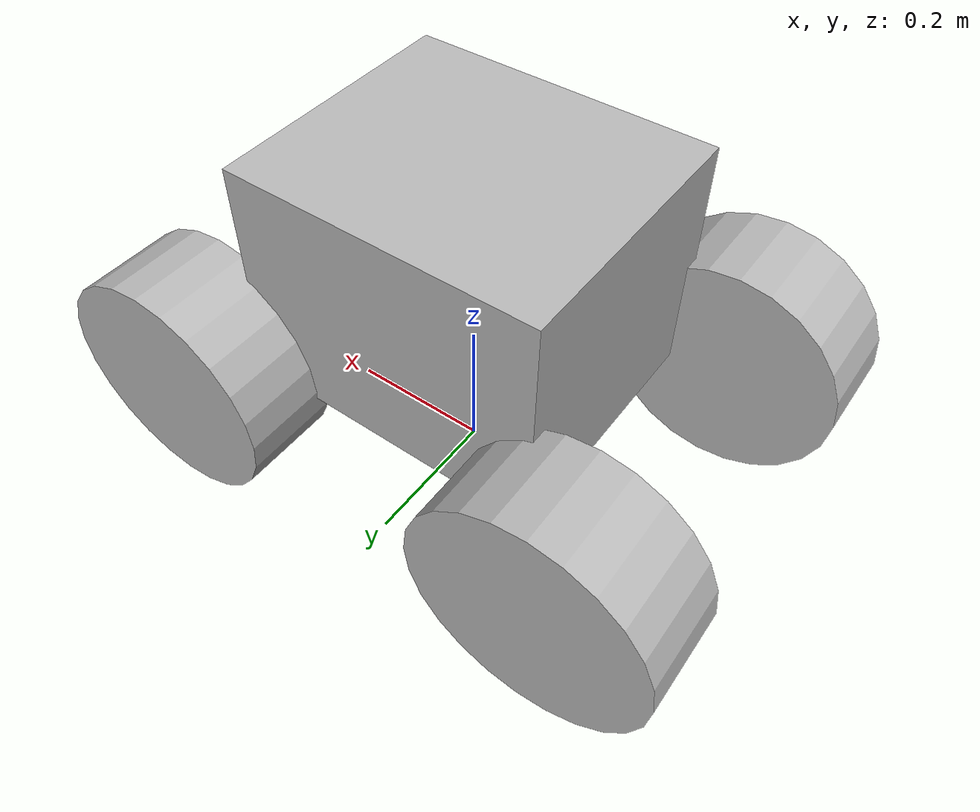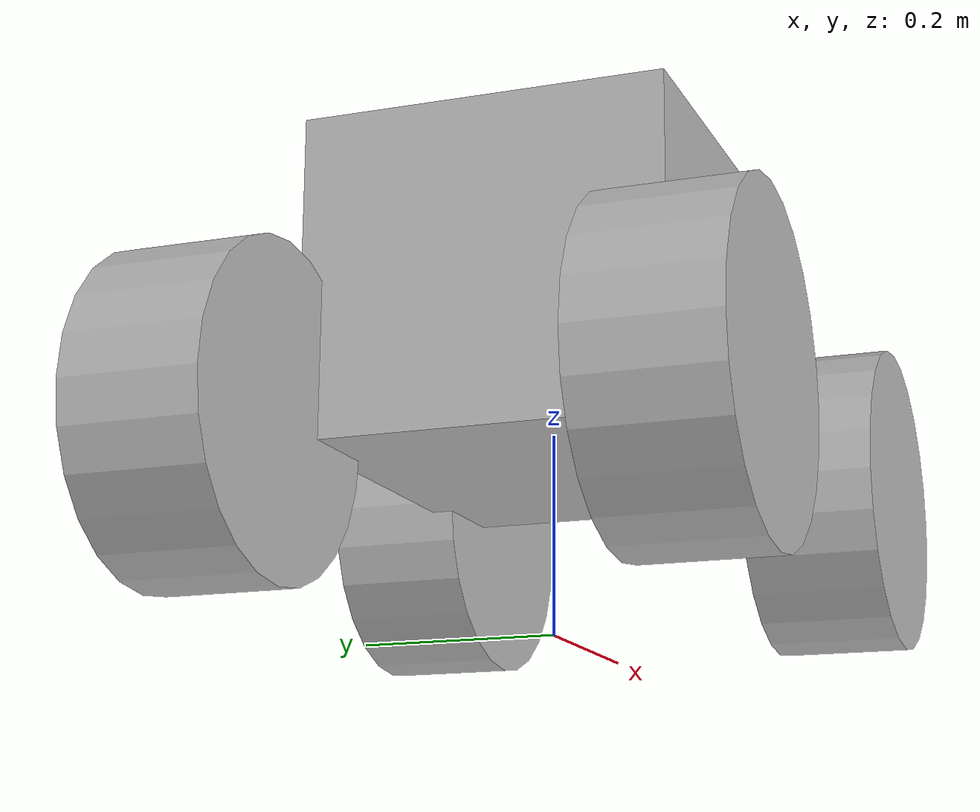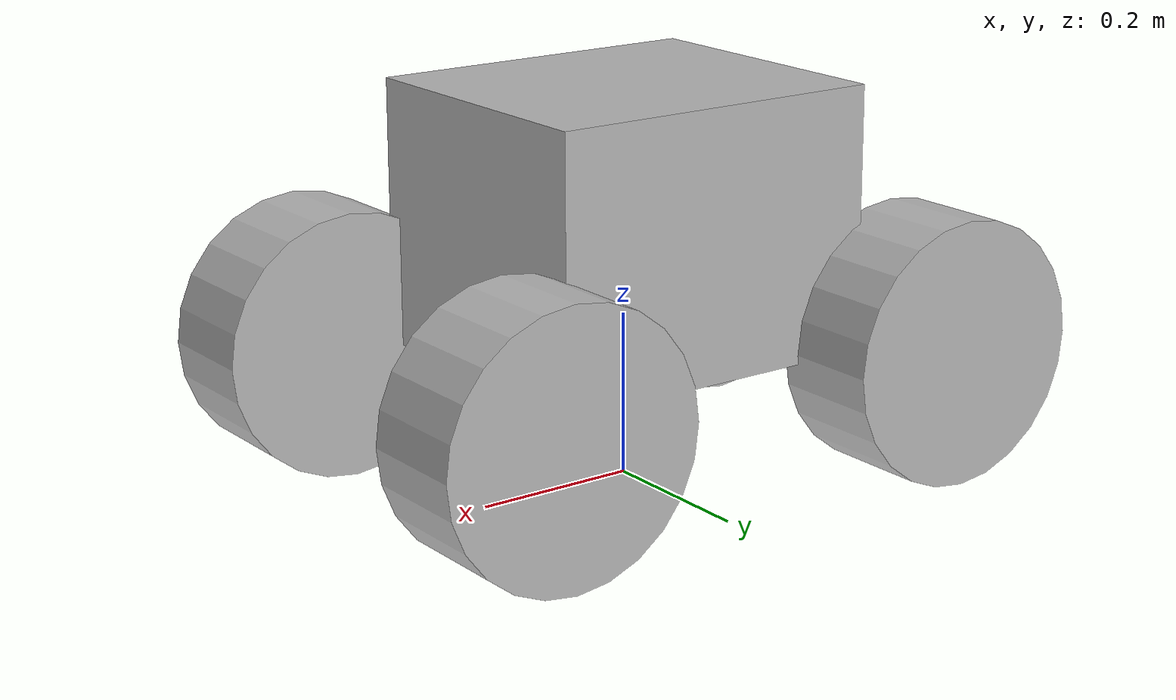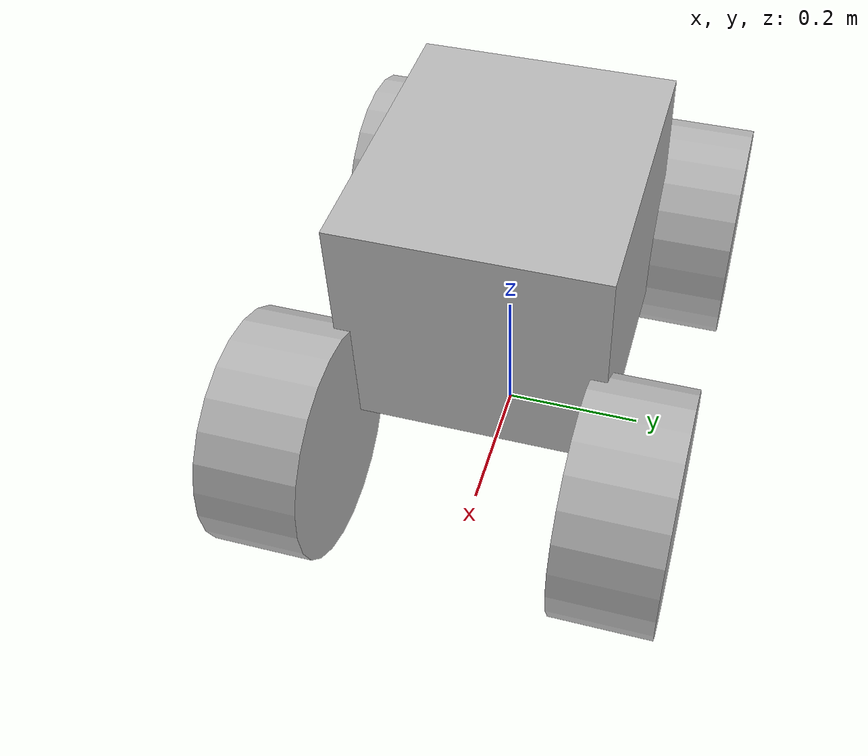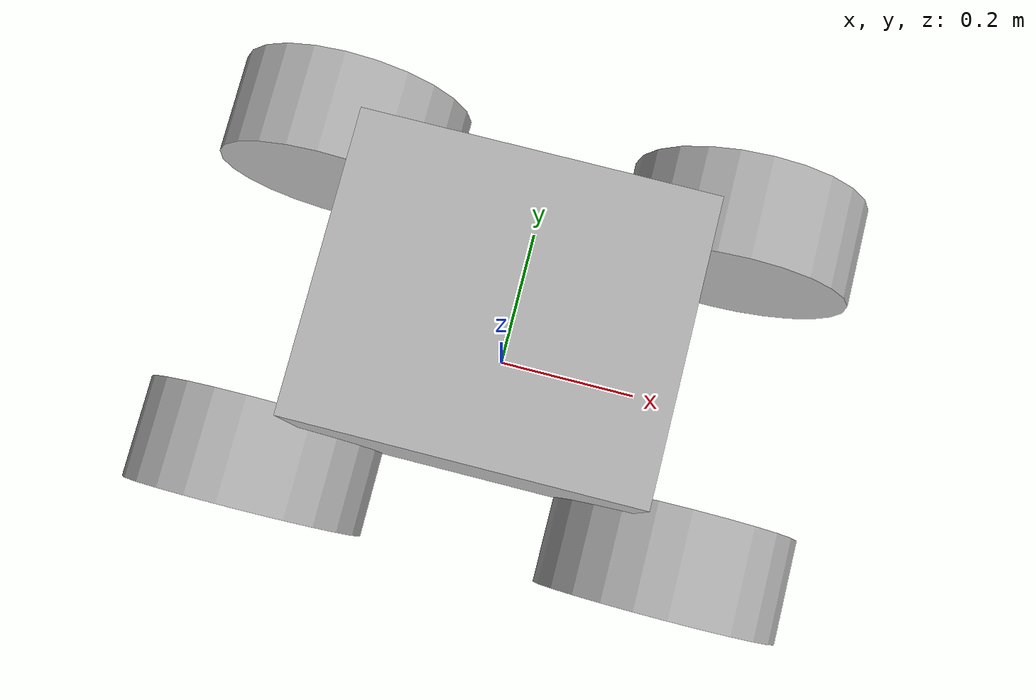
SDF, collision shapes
<?xml version="1.0" ?>
<sdf version='1.7'>
  <model name='bigbot'>

    <plugin
      filename="libgps_fix_simulator.so"
      name="gps_fix_simulator">
      <link_name>bigbot_gps</link_name>
      <child_frame>FP_POI</child_frame>
      <parent_frame>FP_ECEF</parent_frame>
      <enu_frame>FP_ENU0</enu_frame>
    </plugin>

    <link name='base_link'>
      <inertial>
        <pose>0.005541 -3e-05 0.010091 0 -0 0</pose>
        <mass>40</mass>
        <inertia>
          <ixx>1.539</ixx>
          <ixy>0.0101</ixy>
          <ixz>-0.103</ixz>
          <iyy>2.913</iyy>
          <iyz>0.0115</iyz>
          <izz>3.314</izz>
        </inertia>
      </inertial>
      <collision name='base_link_fixed_joint_lump__bigbot_Base_collision'>
        <pose>0 0 0.32 0 -0 0</pose>
        <geometry>
          <box>
            <size>0.42 0.36 0.32</size>
          </box>
        </geometry>
      </collision>
      <visual name='base_link_fixed_joint_lump__bigbot_Base_visual'>
        <pose>0 0 0 0 -0 0</pose>
        <geometry>
          <mesh>
            <scale>0.001 0.001 0.001</scale>
            <uri>model://bigbot/meshes/bigbot_frame.dae</uri>
          </mesh>
        </geometry>
      </visual>
      <visual name='base_link_fixed_joint_lump__Assembly_TIM_lidar_urdf_1_Base_visual_1'>
        <pose>0.446 0 0.306 0 -0 1.5708</pose>
        <geometry>
          <mesh>
            <scale>0.01 0.01 0.01</scale>
            <uri>model://bigbot/meshes/tim_lidar.dae</uri>
          </mesh>
        </geometry>
      </visual>
      <visual name='base_link_fixed_joint_lump__Assembly_fixposition_frame_1_Base_visual_2'>
        <pose>0.315 0 0.48 1.5708 -0 1.5708</pose>
        <geometry>
          <mesh>
            <scale>0.001 0.001 0.001</scale>
            <uri>model://bigbot/meshes/fixpos.dae</uri>
          </mesh>
        </geometry>
      </visual>
    </link>

    <joint name="base_to_lidar" type="fixed">
      <parent>base_link</parent>
      <child>Assembly_TIM_lidar_urdf_1_UCS2</child>
      <pose>0.446 0 0.391 0 0 0</pose>
    </joint>

    <link name="Assembly_TIM_lidar_urdf_1_UCS2">
      <sensor name='lidar' type="gpu_lidar">
        <always_on>true</always_on>
        <visualize>true</visualize>
        <pose>0.446 0 0.391 0 -0 0</pose>
        <update_rate>5</update_rate>
        <topic>scan</topic>
        <gz_frame_id>Assembly_TIM_lidar_urdf_1_UCS2</gz_frame_id>
        <lidar>
          <scan>
            <horizontal>
              <samples>360</samples>
              <resolution>1.0</resolution>
              <min_angle>-2.0</min_angle>
              <max_angle>2.0</max_angle>
            </horizontal>
            <vertical>
              <samples>1</samples>
              <min_angle>0.0</min_angle>
              <max_angle>0.0</max_angle>
          </vertical>
          </scan>
          <range>
            <min>0.1</min>
            <max>15</max>
            <resolution>0.015</resolution>
          </range>
          <noise>
            <type>gaussian</type>
            <mean>0.0</mean>
            <stddev>0.01</stddev>
          </noise>
        </lidar>
      </sensor>
  </link>

<joint name="base_to_gps" type="fixed">
  <parent>base_link</parent>
  <child>bigbot_gps</child>
  <pose>0.375 0.0 0.480 0 0 0</pose>
</joint>

    <link name="bigbot_gps">
      <sensor name="gps_sensor" type="navsat">
        <always_on>true</always_on>
        <update_rate>10</update_rate>
        <topic>gps/fix</topic>
        <gz_frame_id>bigbot_UCSTF</gz_frame_id>
        <navsat>
          <position_sensing>
            <horizontal>
              <noise type="gaussian">
                <mean>0.0</mean>
                <stddev>2e-8</stddev>
              </noise>
            </horizontal>
            <vertical>
              <noise type="gaussian">
                <mean>0.0</mean>
                <stddev>4e-8</stddev>
              </noise>
            </vertical>
          </position_sensing>
          <velocity_sensing>
            <horizontal>
              <noise type="gaussian">
                <mean>0.0</mean>
                <stddev>2e-8</stddev>
              </noise>
            </horizontal>
            <vertical>
              <noise type="gaussian">
                <mean>0.0</mean>
                <stddev>4e-8</stddev>
              </noise>
            </vertical>
          </velocity_sensing>
        </navsat>
      </sensor>
    </link>

    <joint name='bigbot_UCSLF_to_wheel_urdf_3_UCS1' type='revolute'>
      <pose relative_to='base_link'>0.27753 0.16887 0.17107 -1.5708 0 0</pose>
      <parent>base_link</parent>
      <child>wheel_urdf_3_UCS1</child>
      <axis>
        <xyz>0 0 1</xyz>
        <limit>
          <effort>30</effort>
          <velocity>10</velocity>
        </limit>
        <dynamics>
          <spring_reference>0</spring_reference>
          <spring_stiffness>0</spring_stiffness>
        </dynamics>
      </axis>
    </joint>

    <link name='wheel_urdf_3_UCS1'>
      <pose relative_to='bigbot_UCSLF_to_wheel_urdf_3_UCS1'>0 0 0 0 -0 0</pose>
      <inertial>
        <pose>-0.00048 0.00039 0.07655 0 -0 0</pose>
        <mass>2.63</mass>
        <inertia>
          <ixx>0.015166</ixx>
          <ixy>3.744e-13</ixy>
          <ixz>7.34879e-11</ixz>
          <iyy>0.015166</iyy>
          <iyz>-5.9709e-11</iyz>
          <izz>0.02414</izz>
        </inertia>
      </inertial>
      <collision name='wheel_urdf_3_UCS1_fixed_joint_lump__wheel_urdf_3_Base_collision'>
        <pose>-0.00048 0.00039 0.05671 3.14159 0.000796 3.14159</pose>
        <geometry>
          <cylinder>
            <length>0.135</length>
            <radius>0.16</radius>
          </cylinder>
        </geometry>
        <surface>
          <friction>
            <ode>
              <mu>1</mu> <!-- Reduced friction coefficient -->
              <mu2>8</mu2>
              <fdir1>1 0 0</fdir1>
              <slip1>0.0015</slip1>
              <slip2>0.0015</slip2> <!-- Restored slip -->
            </ode>
          </friction>
          <contact>
            <ode>
              <soft_cfm>0.001</soft_cfm>
              <soft_erp>0.2</soft_erp>
              <kp>1e+6</kp>
              <kd>100</kd>
              <max_vel>1.0</max_vel>
              <min_depth>0.01</min_depth> <!-- Updated minimum contact depth -->
            </ode>
          </contact>
        </surface>
      </collision>
      <visual name='wheel_urdf_3_UCS1_fixed_joint_lump__wheel_urdf_3_Base_visual'>
        <pose>-0.00048 0.00039 0.07671 0 1.5708 0</pose>
        <geometry>
          <mesh>
            <scale>0.001 0.001 0.001</scale>
            <uri>model://bigbot/meshes/wheel.dae</uri>
          </mesh>
        </geometry>
      </visual>
    </link>

    <joint name='bigbot_UCSLR_to_wheel_urdf_4_UCS1' type='revolute'>
      <pose relative_to='base_link'>-0.27753 0.16887 0.17107 -1.5708 0 0</pose>
      <parent>base_link</parent>
      <child>wheel_urdf_4_UCS1</child>
      <axis>
        <xyz>0 0 1</xyz>
        <limit>
          <effort>30</effort>
          <velocity>10</velocity>
        </limit>
        <dynamics>
          <spring_reference>0</spring_reference>
          <spring_stiffness>0</spring_stiffness>
        </dynamics>
      </axis>
    </joint>

    <link name='wheel_urdf_4_UCS1'>
      <pose relative_to='bigbot_UCSLR_to_wheel_urdf_4_UCS1'>0 0 0 0 -0 0</pose>
      <inertial>
        <pose>-0.00048 0.00039 0.07655 0 -0 0</pose>
        <mass>2.63</mass>
        <inertia>
          <ixx>0.015166</ixx>
          <ixy>3.744e-13</ixy>
          <ixz>7.34879e-11</ixz>
          <iyy>0.015166</iyy>
          <iyz>-5.9709e-11</iyz>
          <izz>0.02414</izz>
        </inertia>
      </inertial>
      <collision name='wheel_urdf_4_UCS1_fixed_joint_lump__wheel_urdf_4_Base_collision'>
        <pose>-0.00048 0.00039 0.05671 3.14159 0.000796 3.14159</pose>
        <geometry>
          <cylinder>
            <length>0.135</length>
            <radius>0.16</radius>
          </cylinder>
        </geometry>
        <surface>
          <friction>
            <ode>
              <mu>1</mu> <!-- Reduced friction coefficient -->
              <mu2>8</mu2>
              <fdir1>1 0 0</fdir1>
              <slip1>0.0015</slip1>
              <slip2>0.0015</slip2> <!-- Restored slip -->
            </ode>
          </friction>
          <contact>
            <ode>
              <soft_cfm>0.001</soft_cfm>
              <soft_erp>0.2</soft_erp>
              <kp>1e+6</kp>
              <kd>100</kd>
              <max_vel>1.0</max_vel>
              <min_depth>0.01</min_depth> <!-- Updated minimum contact depth -->
            </ode>
          </contact>
        </surface>
      </collision>
      <visual name='wheel_urdf_4_UCS1_fixed_joint_lump__wheel_urdf_4_Base_visual'>
        <pose>-0.00048 0.00039 0.07671 0 1.5708 0</pose>
        <geometry>
          <mesh>
            <scale>0.001 0.001 0.001</scale>
            <uri>model://bigbot/meshes/wheel.dae</uri>
          </mesh>
        </geometry>
      </visual>
    </link>

    <joint name='bigbot_UCSRF_to_wheel_urdf_1_UCS1' type='revolute'>
      <pose relative_to='base_link'>0.27753 -0.16887 0.17107 1.5708 -0 0</pose>
      <parent>base_link</parent>
      <child>wheel_urdf_1_UCS1</child>
      <axis>
        <xyz>0 0 -1</xyz> <!-- Reversed axis direction -->
        <limit>
          <effort>30</effort>
          <velocity>10</velocity>
        </limit>
        <dynamics>
          <spring_reference>0</spring_reference>
          <spring_stiffness>0</spring_stiffness>
        </dynamics>
      </axis>
    </joint>

    <link name='wheel_urdf_1_UCS1'>
      <pose relative_to='bigbot_UCSRF_to_wheel_urdf_1_UCS1'>0 0 0 0 -0 0</pose>
      <inertial>
        <pose>-0.00048 0.00039 0.07655 0 -0 0</pose>
        <mass>2.63</mass>
        <inertia>
          <ixx>0.015166</ixx>
          <ixy>3.744e-13</ixy>
          <ixz>7.34879e-11</ixz>
          <iyy>0.015166</iyy>
          <iyz>-5.9709e-11</iyz>
          <izz>0.02414</izz>
        </inertia>
      </inertial>
      <collision name='wheel_urdf_1_UCS1_fixed_joint_lump__wheel_urdf_1_Base_collision'>
        <pose>-0.00048 0.00039 0.05671 3.14159 0.000796 3.14159</pose>
        <geometry>
          <cylinder>
            <length>0.135</length>
            <radius>0.16</radius>
          </cylinder>
        </geometry>
        <surface>
          <friction>
            <ode>
              <mu>1</mu> <!-- Reduced friction coefficient -->
              <mu2>8</mu2>
              <fdir1>1 0 0</fdir1>
              <slip1>0.0015</slip1>
              <slip2>0.0015</slip2> <!-- Restored slip -->
            </ode>
          </friction>
          <contact>
            <ode>
              <soft_cfm>0.001</soft_cfm>
              <soft_erp>0.2</soft_erp>
              <kp>1e+6</kp>
              <kd>100</kd>
              <max_vel>1.0</max_vel>
              <min_depth>0.01</min_depth> <!-- Updated minimum contact depth -->
            </ode>
          </contact>
        </surface>
      </collision>
      <visual name='wheel_urdf_1_UCS1_fixed_joint_lump__wheel_urdf_1_Base_visual'>
        <pose>-0.00048 0.00039 0.07671 0 1.5708 0</pose>
        <geometry>
          <mesh>
            <scale>0.001 0.001 0.001</scale>
            <uri>model://bigbot/meshes/wheel.dae</uri>
          </mesh>
        </geometry>
      </visual>
    </link>
    <joint name='bigbot_UCSRR_to_wheel_urdf_2_UCS1' type='revolute'>
      <pose relative_to='base_link'>-0.27753 -0.16887 0.17107 1.5708 -0 0</pose>
      <parent>base_link</parent>
      <child>wheel_urdf_2_UCS1</child>
      <axis>
        <xyz>0 0 -1</xyz> <!-- Reversed axis direction -->
        <limit>
          <effort>30</effort>
          <velocity>10</velocity>
        </limit>
        <dynamics>
          <spring_reference>0</spring_reference>
          <spring_stiffness>0</spring_stiffness>
        </dynamics>
      </axis>
    </joint>
    <link name='wheel_urdf_2_UCS1'>
      <pose relative_to='bigbot_UCSRR_to_wheel_urdf_2_UCS1'>0 0 0 0 -0 0</pose>
      <inertial>
        <pose>-0.00048 0.00039 0.07655 0 -0 0</pose>
        <mass>2.63</mass>
        <inertia>
          <ixx>0.015166</ixx>
          <ixy>3.744e-13</ixy>
          <ixz>7.34879e-11</ixz>
          <iyy>0.015166</iyy>
          <iyz>-5.9709e-11</iyz>
          <izz>0.02414</izz>
        </inertia>
      </inertial>
      <collision name='wheel_urdf_2_UCS1_fixed_joint_lump__wheel_urdf_2_Base_collision'>
        <pose>-0.00048 0.00039 0.05671 3.14159 0.000796 3.14159</pose>
        <geometry>
          <cylinder>
            <length>0.135</length>
            <radius>0.16</radius>
          </cylinder>
        </geometry>
        <surface>
          <friction>
            <ode>
              <mu>1</mu> <!-- Reduced friction coefficient -->
              <mu2>8</mu2> <!-- driving direction-->
              <fdir1>1 0 0</fdir1>
              <slip1>0.0015</slip1> <!-- Further reduced slip -->
              <slip2>0.0015</slip2> <!-- driving direction  -->
            </ode>
          </friction>
          <contact>
            <ode>
              <soft_cfm>0.001</soft_cfm>
              <soft_erp>0.2</soft_erp>
              <kp>1e+6</kp>
              <kd>100</kd>
              <max_vel>1.0</max_vel>
              <min_depth>0.01</min_depth> <!-- Updated minimum contact depth -->
            </ode>
          </contact>
        </surface>
      </collision>
      <visual name='wheel_urdf_2_UCS1_fixed_joint_lump__wheel_urdf_2_Base_visual'>
        <pose>-0.00048 0.00039 0.07671 0 1.5708 0</pose>
        <geometry>
          <mesh>
            <scale>0.001 0.001 0.001</scale>
            <uri>model://bigbot/meshes/wheel.dae</uri>
          </mesh>
        </geometry>
      </visual>
    </link>

    <plugin filename="gz-sim-diff-drive-system" name="gz::sim::systems::DiffDrive">

       <!-- wheels -->
       <left_joint>bigbot_UCSLF_to_wheel_urdf_3_UCS1</left_joint>
       <left_joint>bigbot_UCSLR_to_wheel_urdf_4_UCS1</left_joint>
       <right_joint>bigbot_UCSRF_to_wheel_urdf_1_UCS1</right_joint>
       <right_joint>bigbot_UCSRR_to_wheel_urdf_2_UCS1</right_joint>

       <!-- kinematics -->
       <wheel_separation>0.489</wheel_separation>
       <wheel_radius>0.165</wheel_radius>

       <!-- limits -->
       <max_linear_acceleration>30.0</max_linear_acceleration>
       <max_angular_acceleration>40.0</max_angular_acceleration>
       <max_linear_velocity>3.0</max_linear_velocity>
       <max_angular_velocity>20.0</max_angular_velocity>

       <topic>cmd_vel</topic>

       <odom_topic>odom</odom_topic>
       <frame_id>odom</frame_id>
       <child_frame_id>base_footprint</child_frame_id>
       <odom_publisher_frequency>10</odom_publisher_frequency>

    </plugin>

    <plugin filename="gz-sim-navsat-system" name="gz::sim::systems::NavSat">
    </plugin>

    <plugin filename="gz-sim-joint-state-publisher-system" name="gz::sim::systems::JointStatePublisher">
      <topic>joint_states</topic>
      <joint_name>bigbot_UCSLF_to_wheel_urdf_3_UCS1</joint_name>
      <joint_name>bigbot_UCSLR_to_wheel_urdf_4_UCS1</joint_name>
      <joint_name>bigbot_UCSRF_to_wheel_urdf_1_UCS1</joint_name>
      <joint_name>bigbot_UCSRR_to_wheel_urdf_2_UCS1</joint_name>
    </plugin>

  </model>
</sdf>
